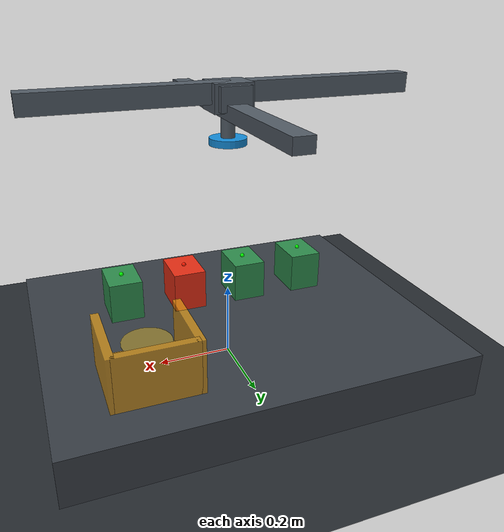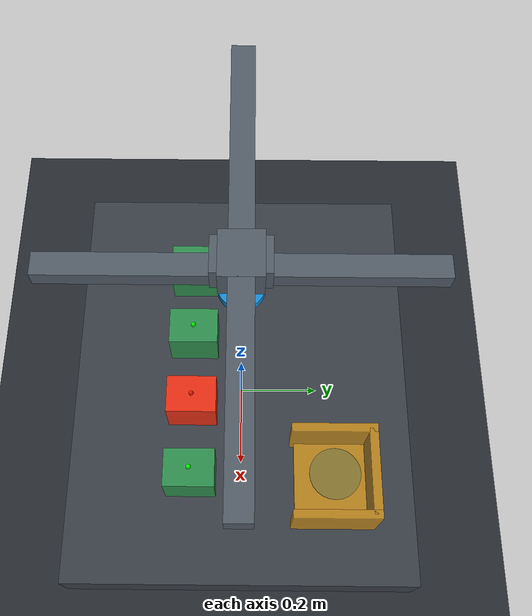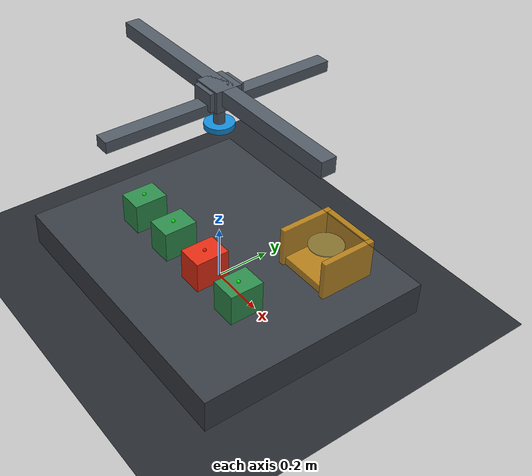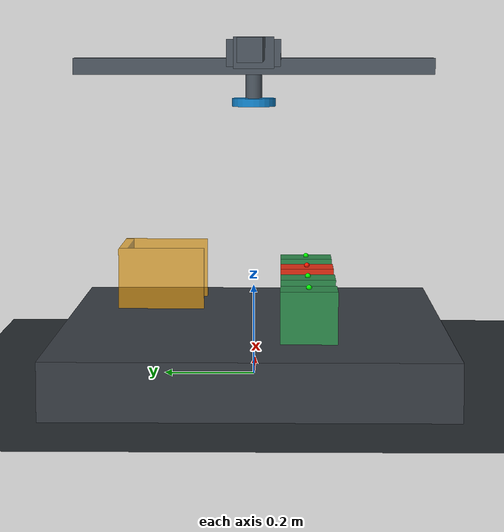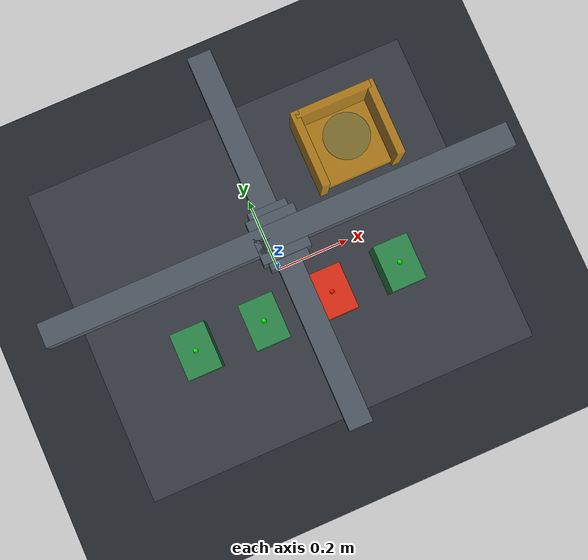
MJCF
<mujoco model="thermasort_battery_triage">
  <compiler angle="radian" autolimits="true"/>
  <option timestep="0.005" gravity="0 0 -9.81" integrator="RK4">
    <flag contact="enable"/>
  </option>
  <size nuser_body="1"/>

  <visual>
    <global azimuth="135" elevation="-25" offwidth="1280" offheight="720"/>
    <quality shadowsize="2048"/>
  </visual>

  <default>
    <joint damping="8" armature="0.05"/>
    <geom condim="4" friction="0.8 0.02 0.002" solref="0.01 1" solimp="0.9 0.95 0.001"/>
    <position kp="500" kv="55" forcerange="-160 160"/>
  </default>

  <asset>
    <texture name="floor_tex" type="2d" builtin="checker" rgb1="0.12 0.14 0.16" rgb2="0.18 0.2 0.22" width="512" height="512"/>
    <material name="floor_mat" texture="floor_tex" texrepeat="4 4" reflectance="0.05"/>
    <material name="steel" rgba="0.32 0.36 0.4 1" metallic="0.7" roughness="0.3"/>
    <material name="safe_cell" rgba="0.18 0.55 0.3 1" metallic="0.25" roughness="0.35"/>
    <material name="hot_cell" rgba="0.9 0.18 0.08 1" metallic="0.25" roughness="0.35"/>
    <material name="tool" rgba="0.08 0.55 0.85 1" metallic="0.4" roughness="0.25"/>
    <material name="quarantine" rgba="0.95 0.65 0.08 0.7"/>
  </asset>

  <worldbody>
    <light pos="0 0 1.5" dir="0 0 -1" diffuse="0.9 0.9 0.9"/>
    <light pos="-0.8 -0.6 0.8" dir="0.7 0.5 -0.6" diffuse="0.5 0.55 0.65"/>
    <geom name="floor" type="plane" size="2 2 0.1" material="floor_mat"/>
    <geom name="workbench" type="box" pos="0 0 0.06" size="0.52 0.42 0.06" rgba="0.22 0.24 0.27 1"/>

    <geom name="rail_x" type="box" pos="0 0 0.73" size="0.49 0.025 0.025" material="steel" contype="0" conaffinity="0"/>
    <geom name="rail_y" type="box" pos="0 0 0.69" size="0.025 0.40 0.018" material="steel" contype="0" conaffinity="0"/>

    <body name="gantry_x" pos="0 0 0.72">
      <joint name="gantry_x_joint" type="slide" axis="1 0 0" range="-0.38 0.38"/>
      <geom type="box" size="0.05 0.045 0.035" material="steel" contype="0" conaffinity="0"/>
      <body name="gantry_y">
        <joint name="gantry_y_joint" type="slide" axis="0 1 0" range="-0.30 0.30"/>
        <geom type="box" size="0.04 0.06 0.03" material="steel" contype="0" conaffinity="0"/>
        <body name="tool">
          <joint name="gantry_z_joint" type="slide" axis="0 0 -1" range="0 0.50"/>
          <geom name="tool_shaft" type="cylinder" pos="0 0 -0.045" size="0.018 0.06" material="steel" contype="0" conaffinity="0"/>
          <geom name="magnet_pad" type="cylinder" pos="0 0 -0.11" size="0.048 0.009" material="tool" mass="0.08"/>
          <site name="tool_contact_site" type="cylinder" pos="0 0 -0.12" size="0.047 0.012" rgba="0 0 0 0"/>
          <site name="tool_frame" type="sphere" size="0.008" rgba="0.2 0.8 1 1"/>
        </body>
      </body>
    </body>

    <body name="cell_0" pos="-0.27 -0.12 0.175" user="38.5">
      <freejoint/>
      <geom type="box" size="0.045 0.06 0.055" material="safe_cell" mass="0.48"/>
      <site name="cell_0_top" pos="0 0 0.058" size="0.006" rgba="0 1 0 1"/>
    </body>
    <body name="cell_1" pos="-0.09 -0.12 0.175" user="42.0">
      <freejoint/>
      <geom type="box" size="0.045 0.06 0.055" material="safe_cell" mass="0.48"/>
      <site name="cell_1_top" pos="0 0 0.058" size="0.006" rgba="0 1 0 1"/>
    </body>
    <body name="cell_2" pos="0.09 -0.12 0.175" user="72.4">
      <freejoint/>
      <geom type="box" size="0.045 0.06 0.055" material="hot_cell" mass="0.48"/>
      <site name="cell_2_top" pos="0 0 0.058" size="0.006" rgba="1 0.1 0 1"/>
    </body>
    <body name="cell_3" pos="0.27 -0.12 0.175" user="40.2">
      <freejoint/>
      <geom type="box" size="0.045 0.06 0.055" material="safe_cell" mass="0.48"/>
      <site name="cell_3_top" pos="0 0 0.058" size="0.006" rgba="0 1 0 1"/>
    </body>

    <geom name="quarantine_base" type="box" pos="0.28 0.22 0.135" size="0.09 0.09 0.015" material="quarantine"/>
    <geom name="quarantine_left" type="box" pos="0.18 0.22 0.19" size="0.01 0.10 0.07" material="quarantine"/>
    <geom name="quarantine_right" type="box" pos="0.38 0.22 0.19" size="0.01 0.10 0.07" material="quarantine"/>
    <geom name="quarantine_back" type="box" pos="0.28 0.31 0.19" size="0.10 0.01 0.07" material="quarantine"/>
    <site name="quarantine_target" pos="0.28 0.22 0.22" type="cylinder" size="0.06 0.002" rgba="1 0.8 0.1 0.4"/>
  </worldbody>

  <actuator>
    <position name="x_servo" joint="gantry_x_joint" ctrlrange="-0.38 0.38"/>
    <position name="y_servo" joint="gantry_y_joint" ctrlrange="-0.30 0.30"/>
    <position name="z_servo" joint="gantry_z_joint" ctrlrange="0 0.50"/>
  </actuator>

  <sensor>
    <jointpos name="x_position" joint="gantry_x_joint"/>
    <jointpos name="y_position" joint="gantry_y_joint"/>
    <jointpos name="z_position" joint="gantry_z_joint"/>
    <jointvel name="x_velocity" joint="gantry_x_joint"/>
    <jointvel name="y_velocity" joint="gantry_y_joint"/>
    <jointvel name="z_velocity" joint="gantry_z_joint"/>
    <touch name="tool_contact" site="tool_contact_site"/>
    <framepos name="tool_position" objtype="body" objname="tool"/>
    <accelerometer name="tool_acceleration" site="tool_frame"/>
  </sensor>
</mujoco>
